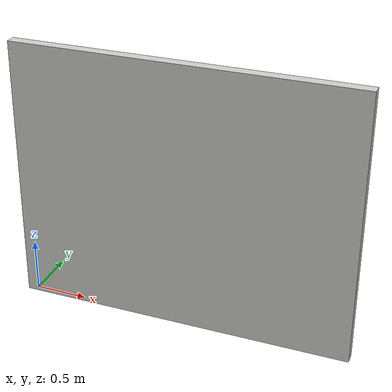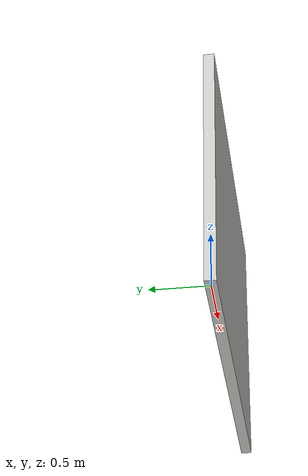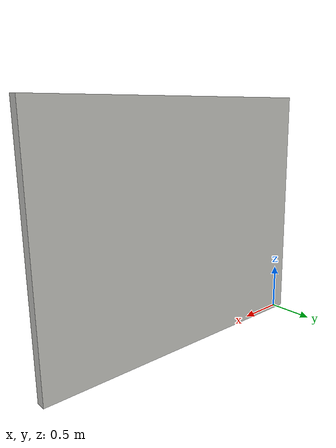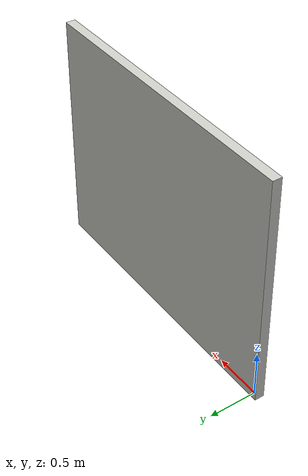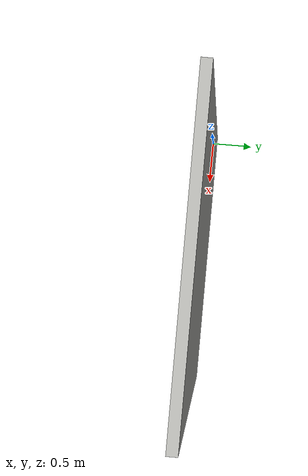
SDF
<?xml version='1.0'?>
<sdf version='1.6'>
  <model name='wall_unit_3m'>
    <pose frame=''>1.5 0 0 0 -0 0</pose>
    <link name='Wall_45'>
      <collision name='Wall_45_Collision'>
        <geometry>
          <box>
            <size>3.15 0.1 2.5</size>
          </box>
        </geometry>
        <pose frame=''>0 0 1.25 0 -0 0</pose>
      </collision>
      <visual name='Wall_45_Visual'>
        <pose frame=''>0 0 1.25 0 -0 0</pose>
        <geometry>
          <box>
            <size>3.15 0.1 2.5</size>
          </box>
        </geometry>
        <material>
          <script>
            <uri>file://media/materials/scripts/gazebo.material</uri>
            <name>Gazebo/CeilingTiled</name>
          </script>
          <ambient>1 1 1 1</ambient>
        </material>
        <meta>
          <layer>0</layer>
        </meta>
      </visual>
      <pose frame=''>0 0 0 0 -0 0</pose>
    </link>
    <static>1</static>
  </model>
</sdf>
